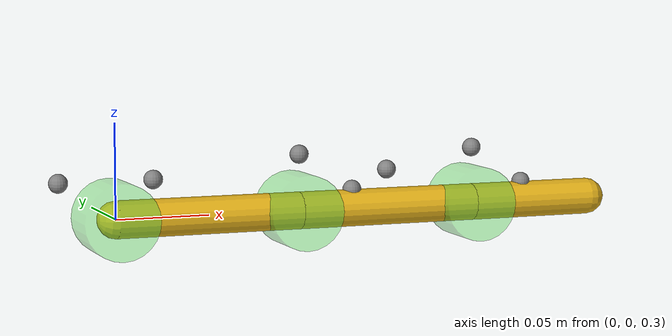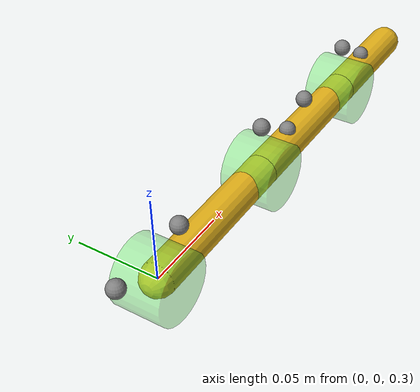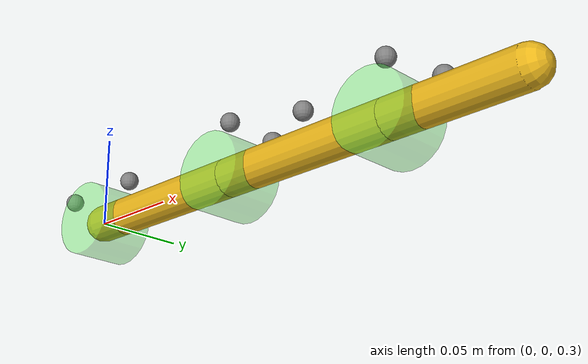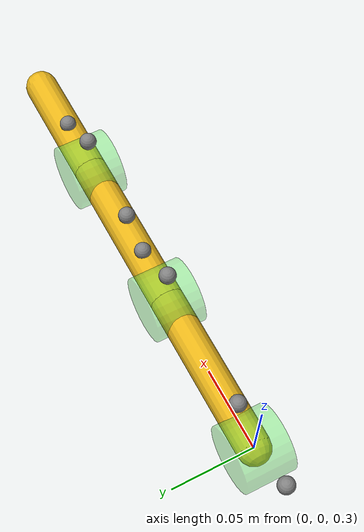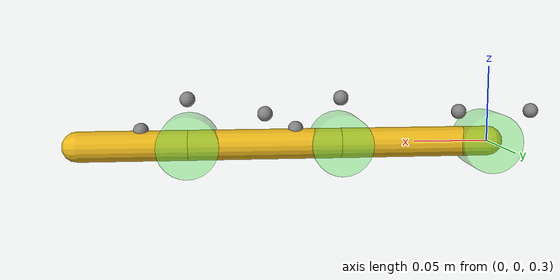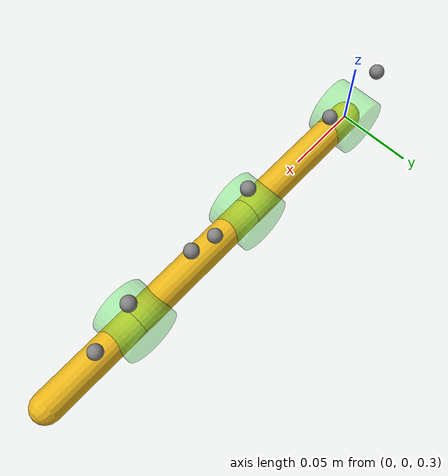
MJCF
<mujoco model="test">
    <compiler coordinate="global"/>
    <default>
        <geom rgba=".9 .7 .1 1" size="0.01"/>
    </default>
    <worldbody>
        <site name="s2" pos="-0.03 0 0.32"/>
        <body>
            <geom type="capsule" fromto="0 0 0.3 0.1 0 0.3"/>
            <geom name="g1" type="cylinder" fromto="0.0 0.015 0.3 0.0 -0.015 0.3" size="0.02" rgba=".3 .9 .3 .4"/>
            <joint pos="0 0 0.3" type="hinge" axis="0 1 0" limited="true" range="0 60" solimplimit="0.95 0.95 0.1"/>
            <site name="s3" pos="0.02 0 0.32"/>
            <body>
                <geom type="capsule" fromto="0.1 0 0.3 0.2 0 0.3"/>
                <geom name="g2" type="cylinder" fromto="0.1 0.015 0.3 0.1 -0.015 0.3" size="0.02" rgba=".3 .9 .3 .4"/>
                <joint pos="0.1 0 0.3" type="hinge" axis="0 1 0" limited="true" range="0 60" solimplimit="0.95 0.95 0.1"/>
                <site name="s4" pos="0.13 0 0.31"/>
                <site name="s5" pos="0.15 0 0.32"/>
                <site name="side2" pos="0.1 0 0.33"/>
                <body>
                    <geom type="capsule" fromto="0.2 0 0.3 0.27 0 0.3"/>
                    <geom name="g3" type="cylinder" fromto="0.2 0.015 0.3 0.2 -0.015 0.3" size="0.02" rgba=".3 .9 .3 .4"/>
                    <joint pos="0.2 0 0.3" type="hinge" axis="0 1 0" limited="true" range="0 60" solimplimit="0.95 0.95 0.1"/>
                    <site name="s6" pos="0.23 0 0.31"/>
                    <site name="side3" pos="0.2 0 0.33"/>
                </body>
            </body>
        </body>
    </worldbody>
</mujoco>
